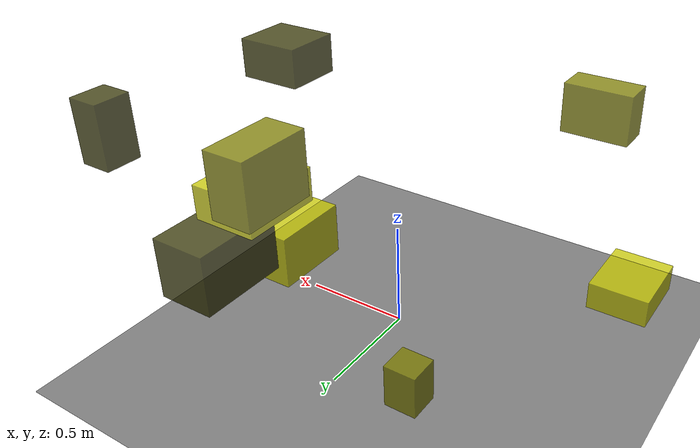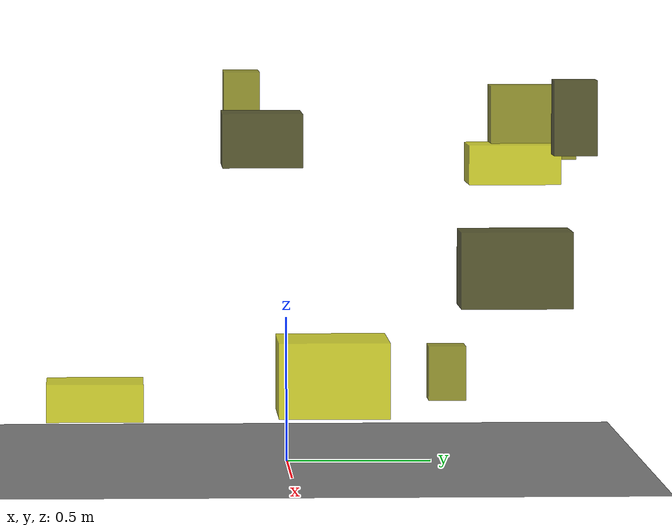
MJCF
<?xml version="1.0"?>
<mujoco model="obstacle_scene">
  <compiler angle="radian" coordinate="local"/>
  <option timestep="0.001" gravity="0 0 -9.81"/>

  <asset>
    <material name="obstacle_mat" rgba="0.8 0.8 0.0 0.8"/>
    <material name="ground_mat" rgba="0.5 0.5 0.5 1"/>
  </asset>

  <worldbody>
    <!-- Ground plane -->
    <geom name="ground" type="plane" size="3 3 0.1" material="ground_mat"/>

    <!-- Obstacles -->
    <body name="obstacle_0" pos="0.581429 0.943132 1.218468">
      <geom name="obs_0" type="box" size="0.064363 0.071733 0.125964" rgba="0.2 0.2 0.0 0.8"/>
    </body>
    <body name="obstacle_1" pos="-0.440764 0.582635 0.265640">
      <geom name="obs_1" type="box" size="0.070205 0.065873 0.096147" rgba="0.5 0.5 0.0 0.8"/>
    </body>
    <body name="obstacle_2" pos="0.066046 0.776672 1.036392">
      <geom name="obs_2" type="box" size="0.125748 0.157709 0.067280" rgba="0.8 0.8 0.0 0.8"/>
    </body>
    <body name="obstacle_3" pos="0.658101 -0.105988 1.152711">
      <geom name="obs_3" type="box" size="0.145490 0.132422 0.089003" rgba="0.2 0.2 0.0 0.8"/>
    </body>
    <body name="obstacle_4" pos="-0.824693 -0.136170 1.224611">
      <geom name="obs_4" type="box" size="0.130064 0.064067 0.095910" rgba="0.5 0.5 0.0 0.8"/>
    </body>
    <body name="obstacle_5" pos="-0.879767 -0.666671 0.124878">
      <geom name="obs_5" type="box" size="0.143872 0.175303 0.068071" rgba="0.8 0.8 0.0 0.8"/>
    </body>
    <body name="obstacle_6" pos="0.303887 0.767071 0.691461">
      <geom name="obs_6" type="box" size="0.120926 0.189704 0.130018" rgba="0.2 0.2 0.0 0.8"/>
    </body>
    <body name="obstacle_7" pos="-0.039872 0.850973 1.173670">
      <geom name="obs_7" type="box" size="0.082284 0.147020 0.127150" rgba="0.5 0.5 0.0 0.8"/>
    </body>
    <body name="obstacle_8" pos="0.579476 0.133747 0.352922">
      <geom name="obs_8" type="box" size="0.190997 0.185040 0.126270" rgba="0.8 0.8 0.0 0.8"/>
    </body>
  </worldbody>
</mujoco>
